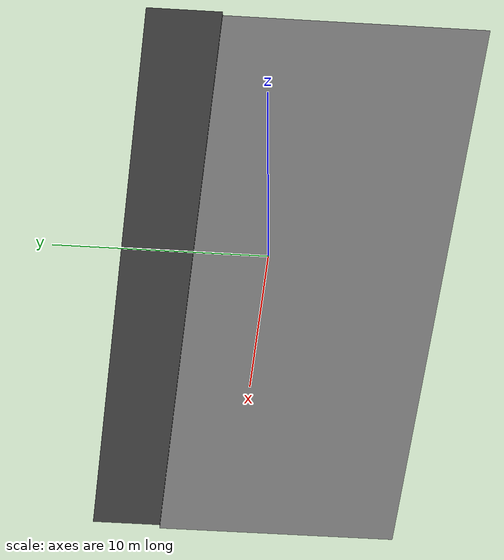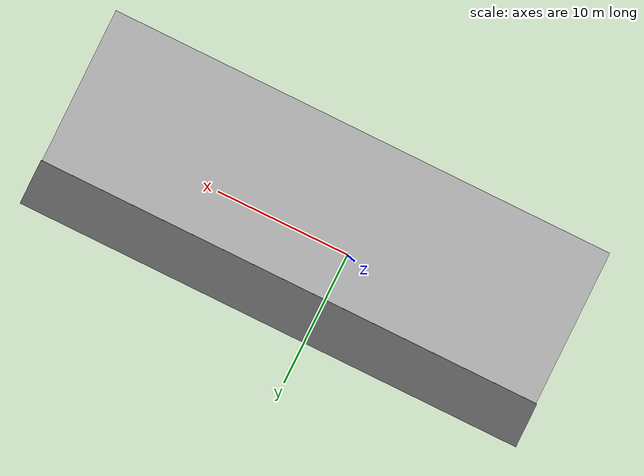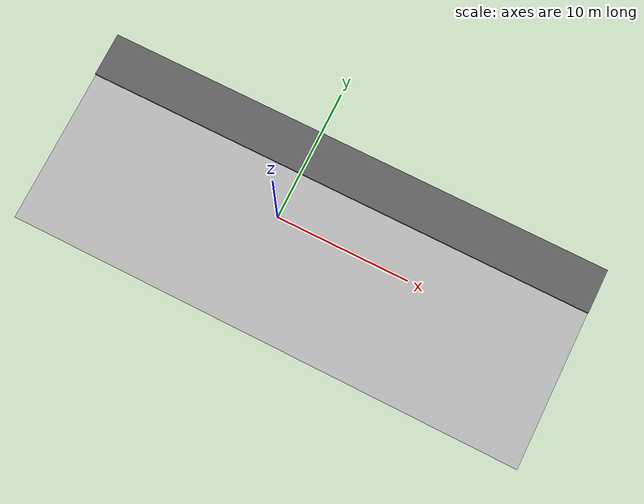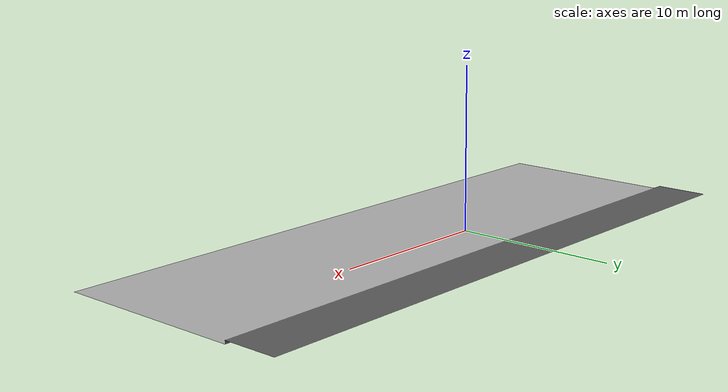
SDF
<?xml version="1.0" ?>
<sdf version="1.10">
  <model name="road">
    <static>true</static>
    <link name="road_link">
      <pose>0 0 0 0 0 0</pose>
      <visual name="road_visual">
        <geometry>
          <mesh>
            <uri>model://autopark_sideways/meshes/autopark_sideways.dae</uri>
          </mesh>
        </geometry>
      </visual>
      <collision name="road_collision">
        <geometry>
          <mesh>
            <uri>model://autopark_sideways/meshes/autopark_sideways.dae</uri>
          </mesh>
        </geometry>
      </collision>
    </link>
  </model>
</sdf>
